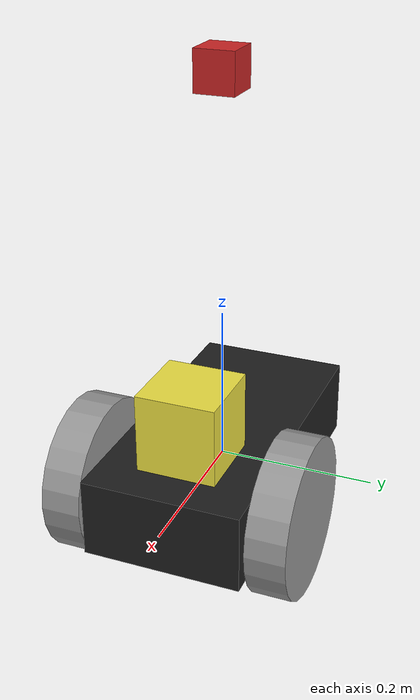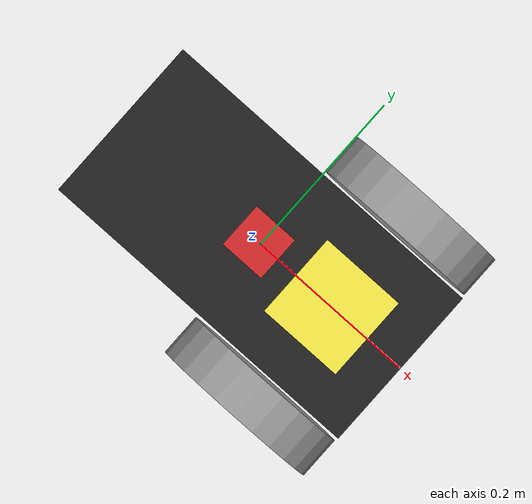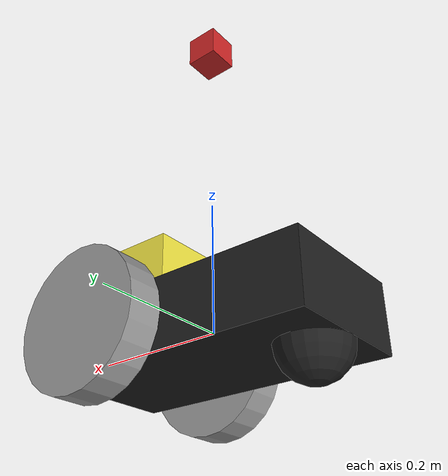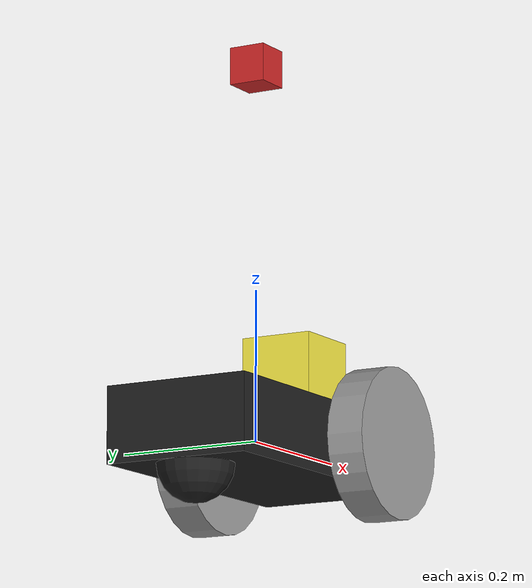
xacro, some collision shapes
<?xml version="1.0"?>
<robot xmlns:xacro="http://www.ros.org/wiki/xacro" name="robot">

  <!-- CONSTANTS -->
  <xacro:property name="base_length" value="0.4" />
  <xacro:property name="base_width" value="0.2" />
  <xacro:property name="base_height" value="0.1" />
  <xacro:property name="wheel_length" value="0.05" />
  <xacro:property name="wheel_radius" value="0.1" />
  <xacro:property name="camera_size" value="0.05" />
  <xacro:property name="camera_name" value="xtion" />
  <xacro:property name="M_PI" value="3.1415926535897931" />

  <!-- BASE LINK -->
  <link name="base_link">
    <visual>
      <geometry>
        <box size="${base_length} ${base_width} ${base_height}"/>
      </geometry>
    </visual>
    <collision>
      <geometry>
        <box size="${base_length} ${base_width} ${base_height}"/>
      </geometry>
    </collision>
    <visual>
      <origin xyz="-${base_length/2 - base_height/2} 0 -${base_height/2}" rpy="0 0 0" />
      <geometry>
        <sphere radius="${base_height/2}" />
      </geometry>
    </visual>
    <collision>
      <origin xyz="-${base_length/2 - base_height/2} 0 -${base_height/2}" rpy="0 0 0" />
      <geometry>
        <sphere radius="${base_height/2}" />
      </geometry>
    </collision>
    <inertial>
      <mass value="0.6"/>
      <inertia ixx="1e-3" ixy="0.0" ixz="0.0" iyy="1e-3" iyz="0.0" izz="1e-3"/>
    </inertial>
  </link>
  <gazebo reference="base_link">
    <mu1>0.0</mu1>
    <mu2>0.0</mu2>
    <material>Gazebo/Black</material>
  </gazebo>

  <!-- LEFT WHEEL -->
  <link name="left_wheel">
    <visual>
      <origin xyz="0 0 0" rpy="1.5707 0 0" />
      <geometry>
        <cylinder length="${base_height/2}" radius="${base_height}" />
      </geometry>
    </visual>
    <collision>
      <origin xyz="0 0 0" rpy="1.5707 0 0" />
      <geometry>
        <cylinder length="${base_height/2}" radius="${base_height}" />
      </geometry>
    </collision>
    <inertial>
      <mass value="0.6"/>
      <inertia ixx="1e-3" ixy="0.0" ixz="0.0" iyy="1e-3" iyz="0.0" izz="1e-3"/>
    </inertial>
  </link>
  <gazebo reference="left_wheel">
    <mu1 value="200.0"/>
    <mu2 value="100.0"/>
    <kp value="10000000.0" />
    <kd value="1.0" />
    <material>Gazebo/Grey</material>
  </gazebo>

  <!-- LEFT WHEEL JOINT -->
  <joint name="left_wheel_joint" type="continuous">
    <parent link="base_link" />
    <child  link="left_wheel" />
    <origin xyz="0.1 0.13 0" />
    <axis rpy="0 0 0" xyz="0 1 0"/>
  </joint>

  <!-- LEFT WHEEL JOINT TRANSMISSION -->
  <transmission name="left_wheel_joint_trans">
    <type>transmission_interface/SimpleTransmission</type>
    <actuator name="$left_wheel_joint_motor">
      <mechanicalReduction>1</mechanicalReduction>
    </actuator>
    <joint name="left_wheel_joint">
      <hardwareInterface>hardware_interface/VelocityJointInterface</hardwareInterface>
    </joint>
  </transmission>

  <!-- RIGHT WHEEL -->
  <link name="right_wheel">
    <visual>
      <origin xyz="0 0 0" rpy="1.5707 0 0" />
      <geometry>
        <cylinder length="${base_height/2}" radius="${base_height}" />
      </geometry>
    </visual>
    <collision>
      <origin xyz="0 0 0" rpy="1.5707 0 0" />
      <geometry>
        <cylinder length="${base_height/2}" radius="${base_height}" />
      </geometry>
    </collision>
    <inertial>
      <mass value="0.6"/>
      <inertia ixx="1e-3" ixy="0.0" ixz="0.0" iyy="1e-3" iyz="0.0" izz="1e-3"/>
    </inertial>
  </link>
  <gazebo reference="right_wheel">
    <mu1 value="200.0"/>
    <mu2 value="100.0"/>
    <kp value="10000000.0" />
    <kd value="1.0" />
    <material>Gazebo/Grey</material>
  </gazebo>

  <!-- RIGHT WHEEL JOINT -->
  <joint name="right_wheel_joint" type="continuous">
    <parent link="base_link" />
    <child  link="right_wheel" />
    <origin xyz="0.1 -0.13 0" />
    <axis rpy="0 0 0" xyz="0 1 0"/>
  </joint>

  <!-- RIGHT WHEEL JOINT TRANSMISSION -->
  <transmission name="right_wheel_joint_trans">
    <type>transmission_interface/SimpleTransmission</type>
    <actuator name="$right_wheel_joint_motor">
      <mechanicalReduction>1</mechanicalReduction>
    </actuator>
    <joint name="right_wheel_joint">
      <hardwareInterface>hardware_interface/VelocityJointInterface</hardwareInterface>
    </joint>
  </transmission>

  <!-- LASER -->
  <link name="laser_link">
    <collision>
      <origin xyz="0 0 0" rpy="0 0 0" />
      <geometry>
        <box size="0.1 0.1 0.1" />
      </geometry>
    </collision>
    <visual>
      <origin xyz="0 0 0" rpy="0 0 0" />
      <geometry>
        <mesh filename="package://lucrezio_simulation_environments/meshes/hokuyo.dae" />
      </geometry>
    </visual>
    <inertial>
      <mass value="1e-5" />
      <origin xyz="0 0 0" rpy="0 0 0"/>
      <inertia ixx="1e-6" ixy="0" ixz="0" iyy="1e-6" iyz="0" izz="1e-6" />
    </inertial>
  </link>

  <!-- LASER JOINT -->
  <joint name="laser_joint" type="fixed">
    <axis xyz="0 1 0" />
    <origin xyz="0.1 0 0.1" rpy="0 0 0" />
    <parent link="base_link" />
    <child  link="laser_link" />
  </joint>

  <!-- HOKUYO SENSOR -->
  <gazebo reference="laser_link">
    <sensor type="gpu_ray" name="head_hokuyo_sensor">
      <pose>0 0 0 0 0 0</pose>
      <visualize>true</visualize>
      <update_rate>40</update_rate>
      <ray>
        <scan>
          <horizontal>
            <samples>1024</samples>
            <resolution>1</resolution>
            <min_angle>-3.14159</min_angle>
            <max_angle>3.14159</max_angle>
          </horizontal>
        </scan>
        <range>
          <min>0.10</min>
          <max>15.0</max>
          <resolution>0.01</resolution>
        </range>
        <noise>
          <type>gaussian</type>
          <mean>0.0</mean>
          <stddev>0.0</stddev>
        </noise>
      </ray>
      <plugin name="gazebo_ros_head_hokuyo_controller" filename="libgazebo_ros_gpu_laser.so">
        <topicName>/scan</topicName>
        <frameName>laser_link</frameName>
      </plugin>
    </sensor>
  </gazebo>

  <!-- CAMERA -->
  <link name="camera_link">
    <collision>
      <origin xyz="0 0 0" rpy="0 0 0"/>
      <geometry>
    <box size="${camera_size} ${camera_size} ${camera_size}"/>
      </geometry>
    </collision>

    <visual>
      <origin xyz="0 0 0" rpy="0 0 0"/>
      <geometry>
    <box size="${camera_size} ${camera_size} ${camera_size}"/>
      </geometry>
      <material name="red"/>
    </visual>

    <inertial>
      <mass value="1e-5" />
      <origin xyz="0 0 0" rpy="0 0 0"/>
      <inertia ixx="1e-6" ixy="0" ixz="0" iyy="1e-6" iyz="0" izz="1e-6" />
    </inertial>
  </link>

  <!-- CAMERA JOINT -->
  <joint name="camera_joint" type="continuous">
    <axis xyz="0 1 0" />
    <origin xyz="0 0 0.5" rpy="0 0 0"/>
    <parent link="base_link"/>
    <child link="camera_link"/>
  </joint>

  <!-- XTION SENSOR -->
  <gazebo reference="camera_link">
    <sensor type="depth" name="rgbd_camera">
      <always_on>true</always_on>
      <update_rate>30.0</update_rate>
      <camera>
        <horizontal_fov>${60.0*M_PI/180.0}</horizontal_fov>
        <image>
          <width>640</width>
          <height>480</height>
          <format>R8G8B8</format>
        </image>
        <clip>
          <near>0.02</near>
          <far>8.0</far>
        </clip>
      </camera>
      <plugin name="rgdb_camera_controller" filename="libgazebo_ros_openni_kinect.so">
        <cameraName>camera</cameraName>
          <alwaysOn>true</alwaysOn>
          <updateRate>30</updateRate>
          <imageTopicName>rgb/image_raw</imageTopicName>
          <depthImageTopicName>depth/image_raw</depthImageTopicName>
          <pointCloudTopicName>depth/points</pointCloudTopicName>
          <cameraInfoTopicName>rgb/camera_info</cameraInfoTopicName>
          <depthImageCameraInfoTopicName>depth/camera_info</depthImageCameraInfoTopicName>
          <frameName>camera_depth_optical_frame</frameName>
          <baseline>0.1</baseline>
          <distortion_k1>0.0</distortion_k1>
          <distortion_k2>0.0</distortion_k2>
          <distortion_k3>0.0</distortion_k3>
          <distortion_t1>0.0</distortion_t1>
          <distortion_t2>0.0</distortion_t2>
          <pointCloudCutoff>0.4</pointCloudCutoff>
      </plugin>
    </sensor>
  </gazebo>

  <!-- LOGICAL CAMERA -->
  <link name="logical_camera_link">
    <collision>
      <origin xyz="0 0 0" rpy="0 0 0"/>
      <geometry>
    <box size="${camera_size} ${camera_size} ${camera_size}"/>
      </geometry>
    </collision>

    <visual>
      <origin xyz="0 0 0" rpy="0 0 0"/>
      <geometry>
    <box size="${camera_size} ${camera_size} ${camera_size}"/>
      </geometry>
      <material name="red"/>
    </visual>

    <inertial>
      <mass value="1e-5" />
      <origin xyz="0 0 0" rpy="0 0 0"/>
      <inertia ixx="1e-6" ixy="0" ixz="0" iyy="1e-6" iyz="0" izz="1e-6" />
    </inertial>
  </link>

  <!-- LOGICAL CAMERA JOINT -->
  <joint name="logical_camera_joint" type="continuous">
    <axis xyz="0 1 0" />
    <origin xyz="0 0 0.5" rpy="0 0 0"/>
    <parent link="base_link"/>
    <child link="logical_camera_link"/>
  </joint>

  <!-- LOGICAL CAMERA SENSOR -->
  <gazebo reference="logical_camera_link">
      <sensor name="logical_camera" type="logical_camera">
        <plugin name="logical_camera_plugin" filename="liblogical_camera_plugin.so"/>

          <logical_camera>
            <near>0.02</near>
            <far>8.0</far>
            <horizontal_fov>${60.0*M_PI/180.0}</horizontal_fov>
            <aspect_ratio>1.778</aspect_ratio>
          </logical_camera>

          <visualize>false</visualize>
          <always_on>true</always_on>
          <update_rate>20</update_rate>
      </sensor>
  </gazebo>

  <!-- Gazebo plugin for ROS Control -->
  <gazebo>
    <plugin name="gazebo_ros_control" filename="libgazebo_ros_control.so">
      <robotNamespace>/</robotNamespace>
    </plugin>
  </gazebo>

</robot>
